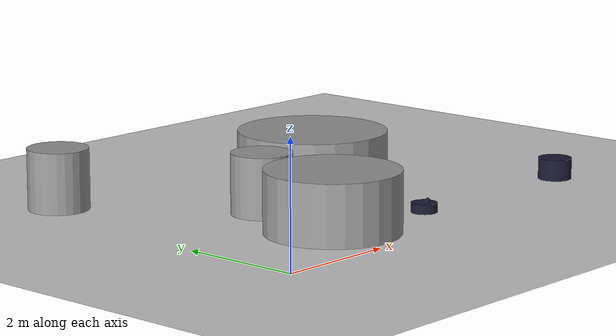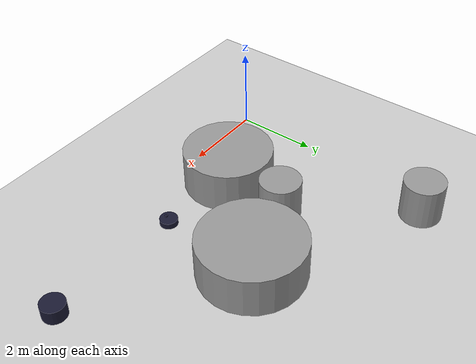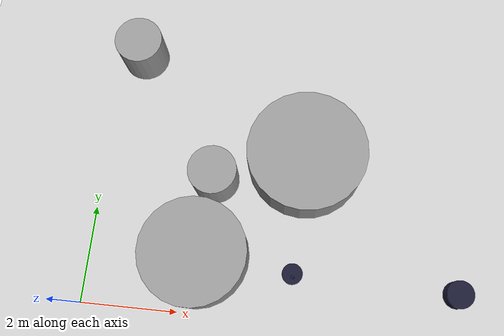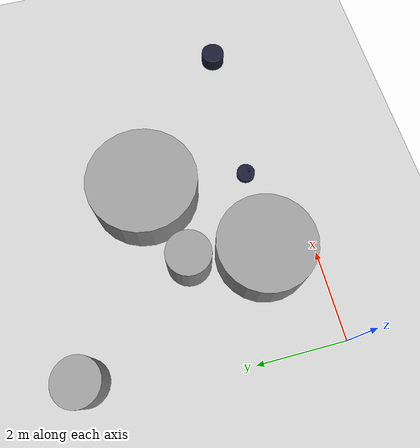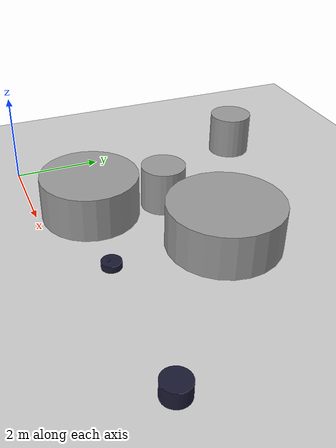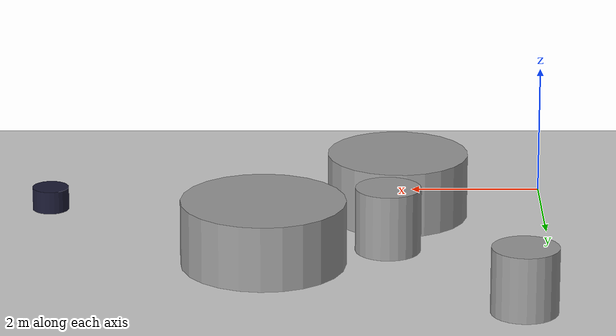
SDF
<sdf version="1.7">
 <world name="default">
  <light name="sun" type="directional">
   <pose>0 0 10 0 -0 0</pose>
   <diffuse>0.8 0.8 0.8 1</diffuse>
   <specular>0.2 0.2 0.2 1</specular>
   <attenuation>
    <range>1000</range>
    <constant>0.9</constant>
    <linear>0.01</linear>
    <quadratic>0.001</quadratic>
   </attenuation>
   <direction>-0.5 0.1 -0.9</direction>
   <spot><inner_angle>0</inner_angle><outer_angle>0</outer_angle><falloff>0</falloff></spot>
  </light>
  <model name="ground_plane">
   <static>1</static>
   <link name="link">
    <collision name="collision">
     <geometry><plane><normal>0 0 1</normal><size>100 100</size></plane></geometry>
     <surface>
      <contact><collide_bitmask>65535</collide_bitmask></contact>
      <friction><ode><mu>100</mu><mu2>50</mu2></ode></friction>
     </surface>
    </collision>
    <visual name="visual">
     <cast_shadows>0</cast_shadows>
     <geometry><plane><normal>0 0 1</normal><size>100 100</size></plane></geometry>
     <material>
      <script><uri>file://media/materials/scripts/gazebo.material</uri><name>Gazebo/Grey</name></script>
     </material>
    </visual>
   </link>
  </model>
  <gravity>0 0 -9.8</gravity>
  <magnetic_field>6e-06 2.3e-05 -4.2e-05</magnetic_field>
  <atmosphere type="adiabatic"/>
  <physics type="ode">
   <max_step_size>0.001</max_step_size>
   <real_time_factor>1</real_time_factor>
   <real_time_update_rate>1000</real_time_update_rate>
  </physics>
  <scene><ambient>0.4 0.4 0.4 1</ambient><background>0.7 0.7 0.7 1</background><shadows>1</shadows></scene>
  <audio><device>default</device></audio>
  <spherical_coordinates>
   <surface_model>EARTH_WGS84</surface_model>
   <latitude_deg>0</latitude_deg>
   <longitude_deg>0</longitude_deg>
   <elevation>0</elevation>
   <heading_deg>0</heading_deg>
  </spherical_coordinates>
  <model name="obstacle">
   <pose>0.547245 5.50256 0.499992 -3e-06 4e-06 0</pose>
   <link name="link">
    <inertial>
     <mass>1</mass>
     <inertia><ixx>0.145833</ixx><ixy>0</ixy><ixz>0</ixz><iyy>0.145833</iyy><iyz>0</iyz><izz>0.125</izz></inertia>
    </inertial>
    <collision name="collision">
     <geometry><cylinder><radius>0.5</radius><length>1</length></cylinder></geometry>
    </collision>
    <visual name="visual">
     <geometry><cylinder><radius>0.5</radius><length>1</length></cylinder></geometry>
     <material>
      <script><name>Gazebo/Grey</name><uri>file://media/materials/scripts/gazebo.material</uri></script>
     </material>
    </visual>
   </link>
  </model>
  <model name="obstacle_1">
   <pose>2.45977 2.84271 0.499998 0 -0 0.023646</pose>
   <link name="link">
    <inertial>
     <mass>1</mass>
     <inertia><ixx>0.145833</ixx><ixy>0</ixy><ixz>0</ixz><iyy>0.145833</iyy><iyz>0</iyz><izz>0.125</izz></inertia>
    </inertial>
    <collision name="collision">
     <geometry><cylinder><radius>0.5</radius><length>0.999996</length></cylinder></geometry>
    </collision>
    <visual name="visual">
     <geometry><cylinder><radius>0.5</radius><length>0.999996</length></cylinder></geometry>
     <material>
      <script><name>Gazebo/Grey</name><uri>file://media/materials/scripts/gazebo.material</uri></script>
     </material>
    </visual>
   </link>
  </model>
  <model name="obstacle_2">
   <pose>4.34317 3.44416 0.49999 7e-06 8e-06 -0.02693</pose>
   <link name="link">
    <inertial>
     <mass>1</mass>
     <inertia><ixx>0.145833</ixx><ixy>0</ixy><ixz>0</ixz><iyy>0.145833</iyy><iyz>0</iyz><izz>0.125</izz></inertia>
    </inertial>
    <collision name="collision">
     <geometry><cylinder><radius>1.24704</radius><length>0.999999</length></cylinder></geometry>
    </collision>
    <visual name="visual">
     <geometry><cylinder><radius>1.24704</radius><length>0.999999</length></cylinder></geometry>
     <material>
      <script><name>Gazebo/Grey</name><uri>file://media/materials/scripts/gazebo.material</uri></script>
     </material>
    </visual>
   </link>
  </model>
  <model name="obstacle_3">
   <pose>2.27058 1.18556 0.499992 -4e-06 9e-06 0.363772</pose>
   <link name="link">
    <inertial>
     <mass>1</mass>
     <inertia><ixx>0.145833</ixx><ixy>0</ixy><ixz>0</ixz><iyy>0.145833</iyy><iyz>0</iyz><izz>0.125</izz></inertia>
    </inertial>
    <collision name="collision">
     <geometry><cylinder><radius>1.08774</radius><length>1</length></cylinder></geometry>
    </collision>
    <visual name="visual">
     <geometry><cylinder><radius>1.08774</radius><length>1</length></cylinder></geometry>
     <material>
      <script><name>Gazebo/Grey</name><uri>file://media/materials/scripts/gazebo.material</uri></script>
     </material>
    </visual>
   </link>
  </model>
  <model name="goal_stand_full">
   <pose>4.27901 1.0047 0.077107 8e-06 1e-06 0</pose>
   <link name="link">
    <inertial>
     <mass>1</mass>
     <inertia><ixx>0.145833</ixx><ixy>0</ixy><ixz>0</ixz><iyy>0.145833</iyy><iyz>0</iyz><izz>0.125</izz></inertia>
    </inertial>
    <collision name="collision">
     <geometry><cylinder><radius>0.214779</radius><length>0.154291</length></cylinder></geometry>
    </collision>
    <visual name="visual">
     <geometry><cylinder><radius>0.214779</radius><length>0.154291</length></cylinder></geometry>
     <material>
      <ambient>0 1 1 0.1</ambient>
      <diffuse>0.1 0.1 0.2 1</diffuse>
      <specular>0 0 0 0</specular>
      <emissive>0 0 0 1</emissive>
     </material>
    </visual>
   </link>
  </model>
  <model name="goal_stand_empty">
   <pose>7.68976 0.92159 0.177677 0 -0 3.8e-05</pose>
   <link name="link">
    <inertial>
     <mass>1</mass>
     <inertia><ixx>0.145833</ixx><ixy>0</ixy><ixz>0</ixz><iyy>0.145833</iyy><iyz>0</iyz><izz>0.125</izz></inertia>
    </inertial>
    <collision name="collision">
     <geometry><cylinder><radius>0.28342</radius><length>0.355373</length></cylinder></geometry>
    </collision>
    <visual name="visual">
     <geometry><cylinder><radius>0.28342</radius><length>0.355373</length></cylinder></geometry>
     <material>
      <ambient>1 0.1 0.1 1</ambient>
      <diffuse>0.1 0.1 0.2 1</diffuse>
      <specular>0 0 0 0</specular>
      <emissive>0 0 0 1</emissive>
     </material>
    </visual>
   </link>
  </model>
  <model name="the_orb">
   <pose>4.28747 0.940254 0.195675 0.000803 0.000112 0</pose>
   <link name="link">
    <inertial>
     <mass>1</mass>
     <inertia><ixx>0.1</ixx><ixy>0</ixy><ixz>0</ixz><iyy>0.1</iyy><iyz>0</iyz><izz>0.1</izz></inertia>
    </inertial>
    <collision name="collision"><geometry><sphere><radius>0.0414226</radius></sphere></geometry></collision>
    <visual name="visual">
     <geometry><sphere><radius>0.0414226</radius></sphere></geometry>
     <material>
      <ambient>0.5 0.5 0.5 1</ambient>
      <diffuse>0.1 0.1 0.2 1</diffuse>
      <specular>0 0 0 1</specular>
      <emissive>1 1 1 1</emissive>
     </material>
    </visual>
   </link>
  </model>
 </world>
</sdf>
